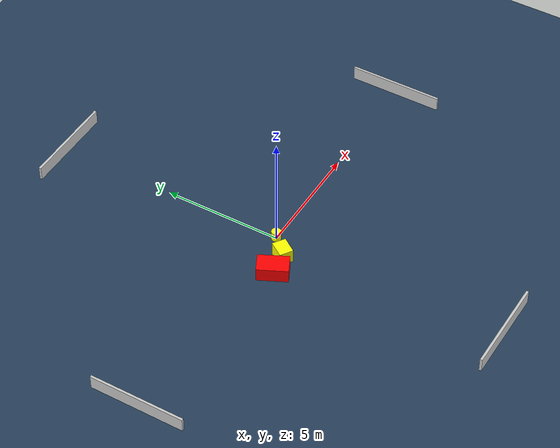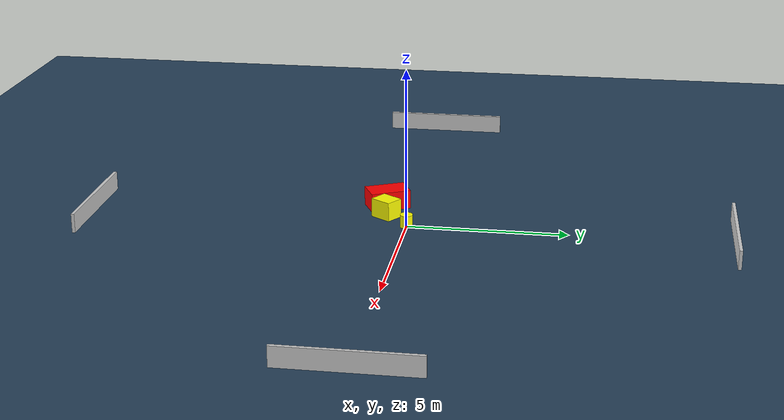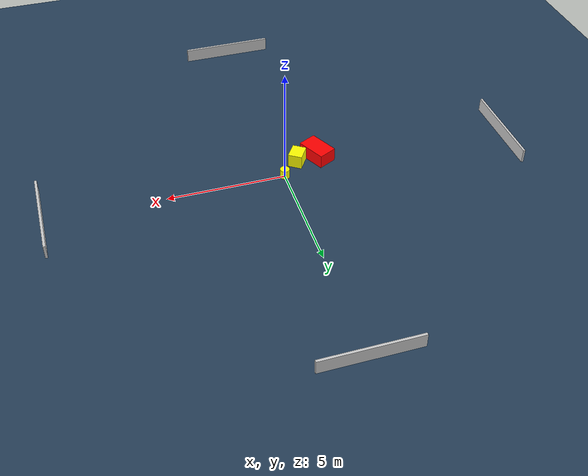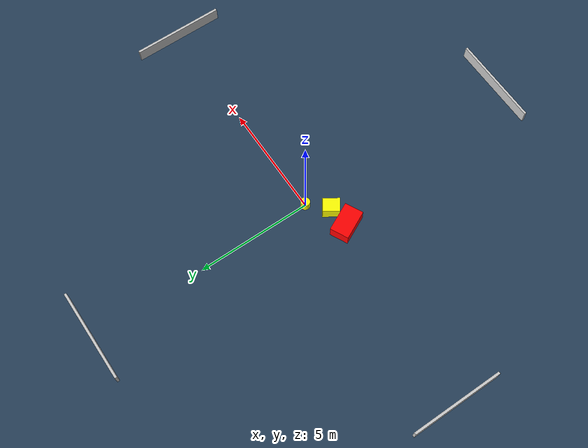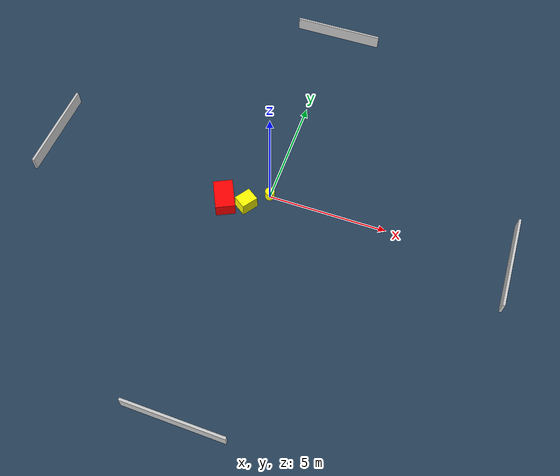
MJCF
<?xml version="1.0" ?>
<mujoco model="generated_environment">
  <option timestep="0.01" integrator="RK4" cone="elliptic"/>
  <default>
    <geom density="1"/>
  </default>
  <asset>
    <texture builtin="gradient" height="3072" name="skybox" rgb1="0.3 0.5 0.7" rgb2="0 0 0" type="skybox" width="512"/>
    <texture builtin="checker" height="300" name="groundplane" rgb1="0.2 0.3 0.4" rgb2="0.1 0.2 0.3" type="2d" width="300"/>
    <material name="groundplane" reflectance="0.2" texrepeat="5 5" texture="groundplane"/>
  </asset>
  <worldbody>
    <light dir="0 0 -1" directional="true" pos="0 0 1.5"/>
    <geom condim="3" friction="0.5 0.005 0.001" material="groundplane" name="floor" pos="0 0 0" size="0 0 0.05" type="plane"/>
    <body name="walls">
      <geom name="wall_1" condim="4" pos="-10.0 0.0 0.3" rgba="0.800000011920929 0.800000011920929 0.800000011920929 1.0" size="0.05 2.0 0.3" type="box"/>
      <geom name="wall_2" condim="4" pos="10.0 0.0 0.3" rgba="0.800000011920929 0.800000011920929 0.800000011920929 1.0" size="0.05 2.0 0.3" type="box"/>
      <geom name="wall_3" condim="4" pos="0.0 -10.0 0.3" rgba="0.800000011920929 0.800000011920929 0.800000011920929 1.0" size="2.0 0.05 0.3" type="box"/>
      <geom name="wall_4" condim="4" pos="0.0 10.0 0.3" rgba="0.800000011920929 0.800000011920929 0.800000011920929 1.0" size="2.0 0.05 0.3" type="box"/>
    </body>
    <body name="robot">
      <joint name="joint_x" type="slide" pos="0 0 0" axis="1 0 0"/>
      <joint name="joint_y" type="slide" pos="0 0 0" axis="0 1 0"/>
      <geom name="robot" type="cylinder" pos="0.0 0.0 0.2" size="0.2 0.2 0.0" mass="5.0" friction="1.0 0.005 0.0001" condim="4" rgba="1.0 1.0 0.0 1.0"/>
    </body>
    <body name="obstacle_1_movable">
      <geom name="obstacle_1_movable" condim="4" pos="-0.7743523861407781 -0.7475310835803795 0.3" euler="0 0 145.98605920126943" friction="0.0 0.005 0.001" rgba="1.0 1.0 0.0 1.0" size="0.29267121578002997 0.35751359086251344 0.3" type="box" mass="0.1"/>
      <joint type="free"/>
    </body>
    <body name="obstacle_2_static">
      <geom name="obstacle_2_static" condim="4" pos="-1.7043221631834033 -0.8569991435239774 0.3" euler="0 0 116.11372523173799" friction="0.0 0.005 0.001" rgba="1.0 0.0 0.0 1.0" size="0.6449418552235588 0.40768392600936687 0.3" type="box"/>
    </body>
  </worldbody>
  <actuator>
    <motor name="actuator_x" joint="joint_x" gear="1" ctrlrange="-1 1"/>
    <motor name="actuator_y" joint="joint_y" gear="1" ctrlrange="-1 1"/>
  </actuator>
</mujoco>
